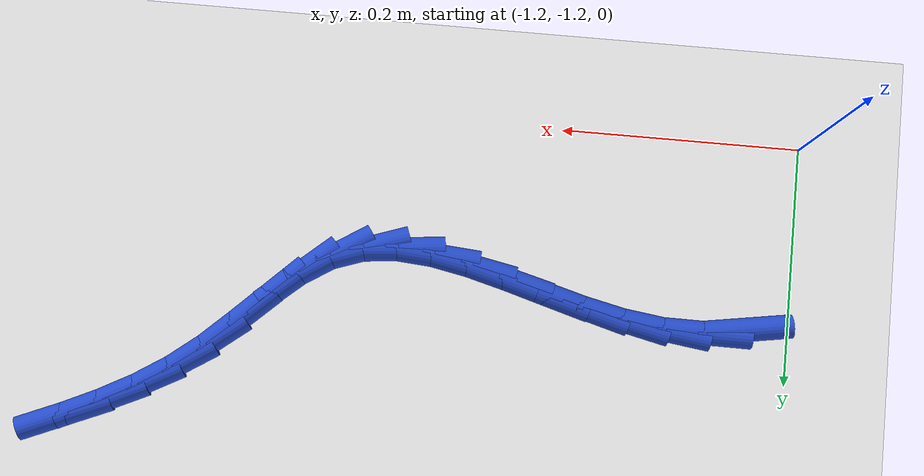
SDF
<sdf version="1.6">
 <world name="default">
  <model name="ground_plane">
   <static>1</static>
   <link name="link">
    <collision name="collision">
     <geometry><plane><normal>0 0 1</normal><size>100 100</size></plane></geometry>
     <surface><friction><ode><mu>100</mu><mu2>50</mu2></ode></friction></surface>
    </collision>
    <visual name="visual">
     <cast_shadows>0</cast_shadows>
     <geometry><plane><normal>0 0 1</normal><size>100 100</size></plane></geometry>
     <material>
      <script><uri>file://media/materials/scripts/gazebo.material</uri><name>Gazebo/WhiteGlow</name></script>
     </material>
    </visual>
   </link>
  </model>
  <model name="line">
   <link name="link_184">
    <pose>-1.1616257345028076 -1.043524316532608 0.01 0 1.57 0.1595504040555936</pose>
    <collision name="collision">
     <geometry><cylinder><radius>0.01</radius><length>0.08</length></cylinder></geometry>
    </collision>
    <visual name="visual">
     <material>
      <script><name>Gazebo/Blue</name><uri>file://media/materials/scripts/gazebo.material</uri></script>
     </material>
     <geometry><cylinder><radius>0.01</radius><length>0.08</length></cylinder></geometry>
    </visual>
   </link>
   <link name="link_185">
    <pose>-1.1283559459871144 -1.0381706024078714 0.01 0 1.57 -0.007422532293092937</pose>
    <collision name="collision">
     <geometry><cylinder><radius>0.01</radius><length>0.08</length></cylinder></geometry>
    </collision>
    <visual name="visual">
     <material>
      <script><name>Gazebo/Blue</name><uri>file://media/materials/scripts/gazebo.material</uri></script>
     </material>
     <geometry><cylinder><radius>0.01</radius><length>0.08</length></cylinder></geometry>
    </visual>
   </link>
   <link name="link_186">
    <pose>-1.0948064511413256 -1.0384196291900907 0.01 0 1.57 -0.13495665755897762</pose>
    <collision name="collision">
     <geometry><cylinder><radius>0.01</radius><length>0.08</length></cylinder></geometry>
    </collision>
    <visual name="visual">
     <material>
      <script><name>Gazebo/Blue</name><uri>file://media/materials/scripts/gazebo.material</uri></script>
     </material>
     <geometry><cylinder><radius>0.01</radius><length>0.08</length></cylinder></geometry>
    </visual>
   </link>
   <link name="link_187">
    <pose>-1.061189881586416 -1.042984154450805 0.01 0 1.57 -0.22161781774817582</pose>
    <collision name="collision">
     <geometry><cylinder><radius>0.01</radius><length>0.08</length></cylinder></geometry>
    </collision>
    <visual name="visual">
     <material>
      <script><name>Gazebo/Blue</name><uri>file://media/materials/scripts/gazebo.material</uri></script>
     </material>
     <geometry><cylinder><radius>0.01</radius><length>0.08</length></cylinder></geometry>
    </visual>
   </link>
   <link name="link_188">
    <pose>-1.0277188481603632 -1.050525806049265 0.01 0 1.57 -0.2704528307672427</pose>
    <collision name="collision">
     <geometry><cylinder><radius>0.01</radius><length>0.08</length></cylinder></geometry>
    </collision>
    <visual name="visual">
     <material>
      <script><name>Gazebo/Blue</name><uri>file://media/materials/scripts/gazebo.material</uri></script>
     </material>
     <geometry><cylinder><radius>0.01</radius><length>0.08</length></cylinder></geometry>
    </visual>
   </link>
   <link name="link_189">
    <pose>-0.9946059617011418 -1.0597062118447202 0.01 0 1.57 -0.2834920096088313</pose>
    <collision name="collision">
     <geometry><cylinder><radius>0.01</radius><length>0.08</length></cylinder></geometry>
    </collision>
    <visual name="visual">
     <material>
      <script><name>Gazebo/Blue</name><uri>file://media/materials/scripts/gazebo.material</uri></script>
     </material>
     <geometry><cylinder><radius>0.01</radius><length>0.08</length></cylinder></geometry>
    </visual>
   </link>
   <link name="link_190">
    <pose>-0.9620638330467285 -1.069186999696421 0.01 0 1.57 -0.25983189000422807</pose>
    <collision name="collision">
     <geometry><cylinder><radius>0.01</radius><length>0.08</length></cylinder></geometry>
    </collision>
    <visual name="visual">
     <material>
      <script><name>Gazebo/Blue</name><uri>file://media/materials/scripts/gazebo.material</uri></script>
     </material>
     <geometry><cylinder><radius>0.01</radius><length>0.08</length></cylinder></geometry>
    </visual>
   </link>
   <link name="link_191">
    <pose>-0.9303050730350982 -1.0776297974636162 0.01 0 1.57 -0.19470228446113502</pose>
    <collision name="collision">
     <geometry><cylinder><radius>0.01</radius><length>0.08</length></cylinder></geometry>
    </collision>
    <visual name="visual">
     <material>
      <script><name>Gazebo/Blue</name><uri>file://media/materials/scripts/gazebo.material</uri></script>
     </material>
     <geometry><cylinder><radius>0.01</radius><length>0.08</length></cylinder></geometry>
    </visual>
   </link>
   <link name="link_192">
    <pose>-0.8995422925042269 -1.0836962330055568 0.01 0 1.57 -0.07940520252126998</pose>
    <collision name="collision">
     <geometry><cylinder><radius>0.01</radius><length>0.08</length></cylinder></geometry>
    </collision>
    <visual name="visual">
     <material>
      <script><name>Gazebo/Blue</name><uri>file://media/materials/scripts/gazebo.material</uri></script>
     </material>
     <geometry><cylinder><radius>0.01</radius><length>0.08</length></cylinder></geometry>
    </visual>
   </link>
   <link name="link_193">
    <pose>-0.869988102292092 -1.0860479341814926 0.01 0 1.57 0.09572919238569942</pose>
    <collision name="collision">
     <geometry><cylinder><radius>0.01</radius><length>0.08</length></cylinder></geometry>
    </collision>
    <visual name="visual">
     <material>
      <script><name>Gazebo/Blue</name><uri>file://media/materials/scripts/gazebo.material</uri></script>
     </material>
     <geometry><cylinder><radius>0.01</radius><length>0.08</length></cylinder></geometry>
    </visual>
   </link>
   <link name="link_194">
    <pose>-0.8418551132366684 -1.0833465288506734 0.01 0 1.57 0.33048066462106823</pose>
    <collision name="collision">
     <geometry><cylinder><radius>0.01</radius><length>0.08</length></cylinder></geometry>
    </collision>
    <visual name="visual">
     <material>
      <script><name>Gazebo/Blue</name><uri>file://media/materials/scripts/gazebo.material</uri></script>
     </material>
     <geometry><cylinder><radius>0.01</radius><length>0.08</length></cylinder></geometry>
    </visual>
   </link>
   <link name="link_195">
    <pose>-0.8153554564426297 -1.0742555032264243 0.01 0 1.57 0.5676513618689818</pose>
    <collision name="collision">
     <geometry><cylinder><radius>0.01</radius><length>0.08</length></cylinder></geometry>
    </collision>
    <visual name="visual">
     <material>
      <script><name>Gazebo/Blue</name><uri>file://media/materials/scripts/gazebo.material</uri></script>
     </material>
     <geometry><cylinder><radius>0.01</radius><length>0.08</length></cylinder></geometry>
    </visual>
   </link>
   <link name="link_196">
    <pose>-0.7904582848987458 -1.0583795735132377 0.01 0 1.57 0.7097775339687006</pose>
    <collision name="collision">
     <geometry><cylinder><radius>0.01</radius><length>0.08</length></cylinder></geometry>
    </collision>
    <visual name="visual">
     <material>
      <script><name>Gazebo/Blue</name><uri>file://media/materials/scripts/gazebo.material</uri></script>
     </material>
     <geometry><cylinder><radius>0.01</radius><length>0.08</length></cylinder></geometry>
    </visual>
   </link>
   <link name="link_197">
    <pose>-0.7664954686707499 -1.037792113629035 0.01 0 1.57 0.764511156910478</pose>
    <collision name="collision">
     <geometry><cylinder><radius>0.01</radius><length>0.08</length></cylinder></geometry>
    </collision>
    <visual name="visual">
     <material>
      <script><name>Gazebo/Blue</name><uri>file://media/materials/scripts/gazebo.material</uri></script>
     </material>
     <geometry><cylinder><radius>0.01</radius><length>0.08</length></cylinder></geometry>
    </visual>
   </link>
   <link name="link_198">
    <pose>-0.7426956638975819 -1.014966319685776 0.01 0 1.57 0.7467527053734092</pose>
    <collision name="collision">
     <geometry><cylinder><radius>0.01</radius><length>0.08</length></cylinder></geometry>
    </collision>
    <visual name="visual">
     <material>
      <script><name>Gazebo/Blue</name><uri>file://media/materials/scripts/gazebo.material</uri></script>
     </material>
     <geometry><cylinder><radius>0.01</radius><length>0.08</length></cylinder></geometry>
    </visual>
   </link>
   <link name="link_199">
    <pose>-0.7182875267181815 -0.9923753877954218 0.01 0 1.57 0.6641575760464993</pose>
    <collision name="collision">
     <geometry><cylinder><radius>0.01</radius><length>0.08</length></cylinder></geometry>
    </collision>
    <visual name="visual">
     <material>
      <script><name>Gazebo/Blue</name><uri>file://media/materials/scripts/gazebo.material</uri></script>
     </material>
     <geometry><cylinder><radius>0.01</radius><length>0.08</length></cylinder></geometry>
    </visual>
   </link>
   <link name="link_200">
    <pose>-0.6925827371088318 -0.972253977628637 0.01 0 1.57 0.5696370687105757</pose>
    <collision name="collision">
     <geometry><cylinder><radius>0.01</radius><length>0.08</length></cylinder></geometry>
    </collision>
    <visual name="visual">
     <material>
      <script><name>Gazebo/Blue</name><uri>file://media/materials/scripts/gazebo.material</uri></script>
     </material>
     <geometry><cylinder><radius>0.01</radius><length>0.08</length></cylinder></geometry>
    </visual>
   </link>
   <link name="link_201">
    <pose>-0.6655523803267264 -0.9549422063474404 0.01 0 1.57 0.49257948347990976</pose>
    <collision name="collision">
     <geometry><cylinder><radius>0.01</radius><length>0.08</length></cylinder></geometry>
    </collision>
    <visual name="visual">
     <material>
      <script><name>Gazebo/Blue</name><uri>file://media/materials/scripts/gazebo.material</uri></script>
     </material>
     <geometry><cylinder><radius>0.01</radius><length>0.08</length></cylinder></geometry>
    </visual>
   </link>
   <link name="link_202">
    <pose>-0.6374820162875738 -0.9398766714944252 0.01 0 1.57 0.43484768169492427</pose>
    <collision name="collision">
     <geometry><cylinder><radius>0.01</radius><length>0.08</length></cylinder></geometry>
    </collision>
    <visual name="visual">
     <material>
      <script><name>Gazebo/Blue</name><uri>file://media/materials/scripts/gazebo.material</uri></script>
     </material>
     <geometry><cylinder><radius>0.01</radius><length>0.08</length></cylinder></geometry>
    </visual>
   </link>
   <link name="link_203">
    <pose>-0.6086591421923265 -0.9264884045826908 0.01 0 1.57 0.3970199273200577</pose>
    <collision name="collision">
     <geometry><cylinder><radius>0.01</radius><length>0.08</length></cylinder></geometry>
    </collision>
    <visual name="visual">
     <material>
      <script><name>Gazebo/Blue</name><uri>file://media/materials/scripts/gazebo.material</uri></script>
     </material>
     <geometry><cylinder><radius>0.01</radius><length>0.08</length></cylinder></geometry>
    </visual>
   </link>
  </model>
 </world>
</sdf>
